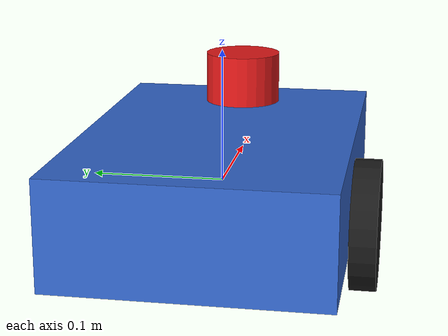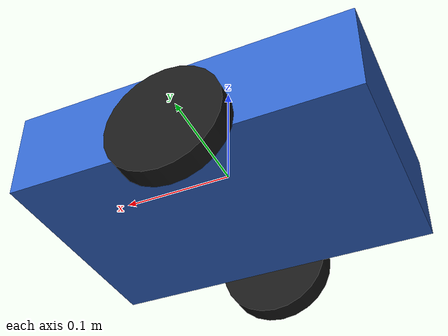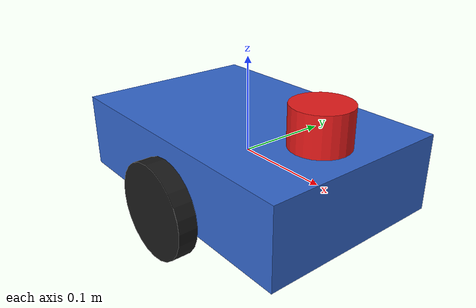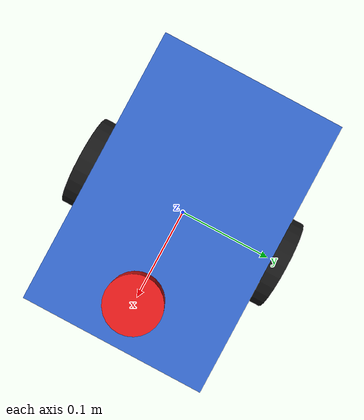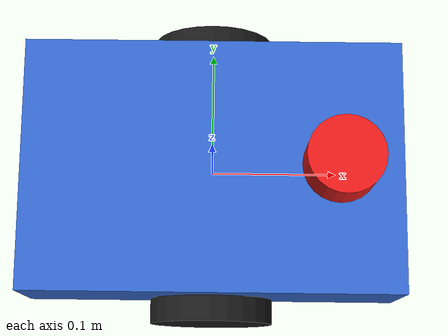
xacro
<?xml version="1.0"?>
<robot name="patrol_robot" xmlns:xacro="http://www.ros.org/wiki/xacro">

  <xacro:property name="base_length" value="0.30"/>
  <xacro:property name="base_width" value="0.20"/>
  <xacro:property name="base_height" value="0.08"/>

  <xacro:property name="wheel_radius" value="0.05"/>
  <xacro:property name="wheel_width" value="0.02"/>
  <xacro:property name="wheel_y_offset" value="0.11"/>
  <xacro:property name="wheel_z_offset" value="-0.03"/>

  <xacro:property name="laser_x" value="0.10"/>
  <xacro:property name="laser_z" value="0.06"/>

  <material name="blue">
    <color rgba="0.2 0.4 0.8 1.0"/>
  </material>

  <material name="black">
    <color rgba="0.1 0.1 0.1 1.0"/>
  </material>

  <material name="red">
    <color rgba="0.9 0.1 0.1 1.0"/>
  </material>

  <link name="base_link">
    <visual>
      <origin xyz="0 0 0" rpy="0 0 0"/>
      <geometry>
        <box size="${base_length} ${base_width} ${base_height}"/>
      </geometry>
      <material name="blue"/>
    </visual>
  </link>

  <link name="left_wheel_link">
    <visual>
      <origin xyz="0 0 0" rpy="1.5708 0 0"/>
      <geometry>
        <cylinder radius="${wheel_radius}" length="${wheel_width}"/>
      </geometry>
      <material name="black"/>
    </visual>
  </link>

  <link name="right_wheel_link">
    <visual>
      <origin xyz="0 0 0" rpy="1.5708 0 0"/>
      <geometry>
        <cylinder radius="${wheel_radius}" length="${wheel_width}"/>
      </geometry>
      <material name="black"/>
    </visual>
  </link>

  <link name="laser_frame">
    <visual>
      <origin xyz="0 0 0" rpy="0 0 0"/>
      <geometry>
        <cylinder radius="0.03" length="0.04"/>
      </geometry>
      <material name="red"/>
    </visual>
  </link>

  <joint name="left_wheel_joint" type="fixed">
    <parent link="base_link"/>
    <child link="left_wheel_link"/>
    <origin xyz="0 ${wheel_y_offset} ${wheel_z_offset}" rpy="0 0 0"/>
  </joint>

  <joint name="right_wheel_joint" type="fixed">
    <parent link="base_link"/>
    <child link="right_wheel_link"/>
    <origin xyz="0 -${wheel_y_offset} ${wheel_z_offset}" rpy="0 0 0"/>
  </joint>

  <joint name="laser_joint" type="fixed">
    <parent link="base_link"/>
    <child link="laser_frame"/>
    <origin xyz="${laser_x} 0 ${laser_z}" rpy="0 0 0"/>
  </joint>

</robot>
